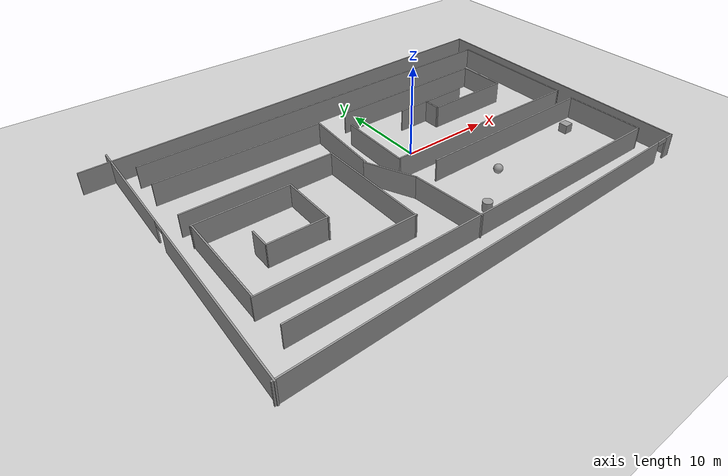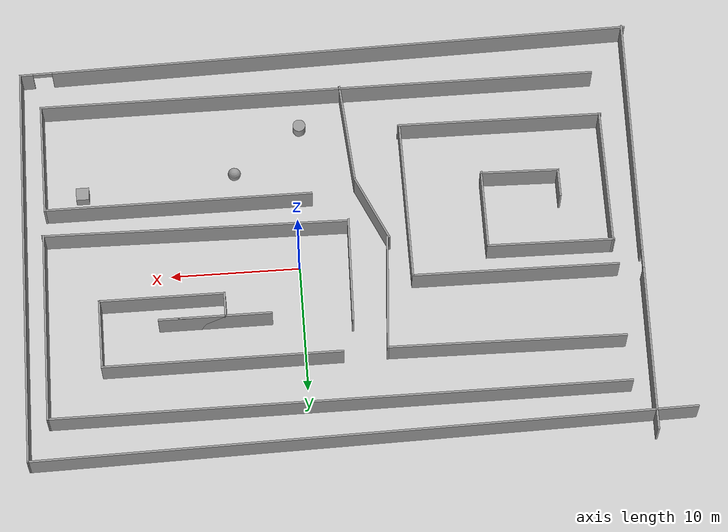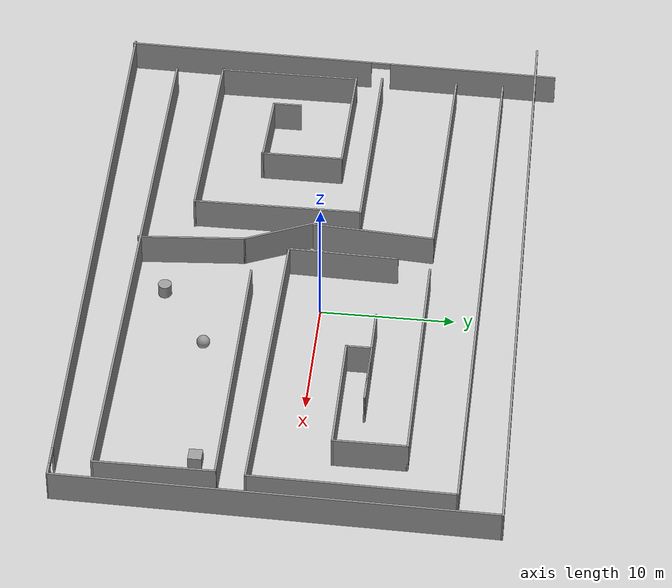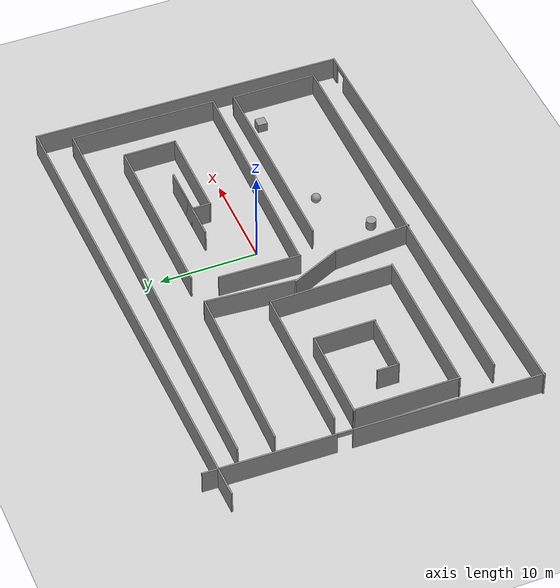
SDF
<sdf version="1.7">
 <world name="default">
  <light name="sun" type="directional">
   <pose>0 0 10 0 -0 0</pose>
   <diffuse>0.8 0.8 0.8 1</diffuse>
   <specular>0.2 0.2 0.2 1</specular>
   <attenuation>
    <range>1000</range>
    <constant>0.9</constant>
    <linear>0.01</linear>
    <quadratic>0.001</quadratic>
   </attenuation>
   <direction>-0.5 0.1 -0.9</direction>
   <spot><inner_angle>0</inner_angle><outer_angle>0</outer_angle><falloff>0</falloff></spot>
  </light>
  <model name="ground_plane">
   <static>1</static>
   <link name="link">
    <collision name="collision">
     <geometry><plane><normal>0 0 1</normal><size>100 100</size></plane></geometry>
     <surface>
      <contact><collide_bitmask>65535</collide_bitmask></contact>
      <friction><ode><mu>100</mu><mu2>50</mu2></ode></friction>
     </surface>
    </collision>
    <visual name="visual">
     <cast_shadows>0</cast_shadows>
     <geometry><plane><normal>0 0 1</normal><size>100 100</size></plane></geometry>
     <material>
      <script><uri>file://media/materials/scripts/gazebo.material</uri><name>Gazebo/Grey</name></script>
     </material>
    </visual>
   </link>
  </model>
  <gravity>0 0 -9.8</gravity>
  <magnetic_field>6e-06 2.3e-05 -4.2e-05</magnetic_field>
  <atmosphere type="adiabatic"/>
  <physics type="ode">
   <max_step_size>0.001</max_step_size>
   <real_time_factor>1</real_time_factor>
   <real_time_update_rate>1000</real_time_update_rate>
  </physics>
  <scene><ambient>0.4 0.4 0.4 1</ambient><background>0.7 0.7 0.7 1</background><shadows>1</shadows></scene>
  <spherical_coordinates>
   <surface_model>EARTH_WGS84</surface_model>
   <latitude_deg>0</latitude_deg>
   <longitude_deg>0</longitude_deg>
   <elevation>0</elevation>
   <heading_deg>0</heading_deg>
  </spherical_coordinates>
  <model name="puzzel.world">
   <pose>-3.9428 -1.05656 0 0 -0 0</pose>
   <link name="Wall_0">
    <pose>-22.4938 0 0 0 -0 -1.58992</pose>
    <visual name="Wall_0_Visual_0">
     <pose>-10.3296 0 1.25 0 -0 0</pose>
     <geometry><box><size>13.0997 0.15 2.5</size></box></geometry>
     <material>
      <script><uri>file://media/materials/scripts/gazebo.material</uri><name>Gazebo/Grey</name></script>
      <ambient>1 1 1 1</ambient>
     </material>
     <meta><layer>0</layer></meta>
    </visual>
    <collision name="Wall_0_Collision_0">
     <geometry><box><size>13.0997 0.15 2.5</size></box></geometry>
     <pose>-10.3296 0 1.25 0 -0 0</pose>
    </collision>
    <visual name="Wall_0_Visual_1">
     <pose>7.29983 0 1.25 0 -0 0</pose>
     <geometry><box><size>19.1593 0.15 2.5</size></box></geometry>
     <material>
      <script><uri>file://media/materials/scripts/gazebo.material</uri><name>Gazebo/Grey</name></script>
      <ambient>1 1 1 1</ambient>
     </material>
     <meta><layer>0</layer></meta>
    </visual>
    <collision name="Wall_0_Collision_1">
     <geometry><box><size>19.1593 0.15 2.5</size></box></geometry>
     <pose>7.29983 0 1.25 0 -0 0</pose>
    </collision>
    <visual name="Wall_0_Visual_2">
     <pose>-3.0298 0 2.25 0 -0 0</pose>
     <geometry><box><size>1.5 0.15 0.5</size></box></geometry>
     <material>
      <script><uri>file://media/materials/scripts/gazebo.material</uri><name>Gazebo/Grey</name></script>
      <ambient>1 1 1 1</ambient>
     </material>
     <meta><layer>0</layer></meta>
    </visual>
    <collision name="Wall_0_Collision_2">
     <geometry><box><size>1.5 0.15 0.5</size></box></geometry>
     <pose>-3.0298 0 2.25 0 -0 0</pose>
    </collision>
   </link>
   <link name="Wall_1">
    <pose>0.944127 -16.295 0 0 -0 0.017766</pose>
    <visual name="Wall_1_Visual_0">
     <pose>-1.29046 0 1.25 0 -0 0</pose>
     <geometry><box><size>45.4208 0.15 2.5</size></box></geometry>
     <material>
      <script><uri>file://media/materials/scripts/gazebo.material</uri><name>Gazebo/Grey</name></script>
      <ambient>1 1 1 1</ambient>
     </material>
     <meta><layer>0</layer></meta>
    </visual>
    <collision name="Wall_1_Collision_0">
     <geometry><box><size>45.4208 0.15 2.5</size></box></geometry>
     <pose>-1.29046 0 1.25 0 -0 0</pose>
    </collision>
    <visual name="Wall_1_Visual_1">
     <pose>23.4604 0 1.25 0 -0 0</pose>
     <geometry><box><size>1.08093 0.15 2.5</size></box></geometry>
     <material>
      <script><uri>file://media/materials/scripts/gazebo.material</uri><name>Gazebo/Grey</name></script>
      <ambient>1 1 1 1</ambient>
     </material>
     <meta><layer>0</layer></meta>
    </visual>
    <collision name="Wall_1_Collision_1">
     <geometry><box><size>1.08093 0.15 2.5</size></box></geometry>
     <pose>23.4604 0 1.25 0 -0 0</pose>
    </collision>
    <visual name="Wall_1_Visual_2">
     <pose>22.1699 0 2.25 0 -0 0</pose>
     <geometry><box><size>1.5 0.15 0.5</size></box></geometry>
     <material>
      <script><uri>file://media/materials/scripts/gazebo.material</uri><name>Gazebo/Grey</name></script>
      <ambient>1 1 1 1</ambient>
     </material>
     <meta><layer>0</layer></meta>
    </visual>
    <collision name="Wall_1_Collision_2">
     <geometry><box><size>1.5 0.15 0.5</size></box></geometry>
     <pose>22.1699 0 2.25 0 -0 0</pose>
    </collision>
   </link>
   <link name="Wall_14">
    <collision name="Wall_14_Collision">
     <geometry><box><size>18.2286 0.15 2.5</size></box></geometry>
     <pose>0 0 1.25 0 -0 0</pose>
    </collision>
    <visual name="Wall_14_Visual">
     <pose>0 0 1.25 0 -0 0</pose>
     <geometry><box><size>18.2286 0.15 2.5</size></box></geometry>
     <material>
      <script><uri>file://media/materials/scripts/gazebo.material</uri><name>Gazebo/Grey</name></script>
      <ambient>1 1 1 1</ambient>
     </material>
     <meta><layer>0</layer></meta>
    </visual>
    <pose>-11.4946 9.02324 0 0 -0 -0.015656</pose>
   </link>
   <link name="Wall_15">
    <collision name="Wall_15_Collision">
     <geometry><box><size>9.19698 0.15 2.5</size></box></geometry>
     <pose>0 0 1.25 0 -0 0</pose>
    </collision>
    <visual name="Wall_15_Visual">
     <pose>0 0 1.25 0 -0 0</pose>
     <geometry><box><size>9.19698 0.15 2.5</size></box></geometry>
     <material>
      <script><uri>file://media/materials/scripts/gazebo.material</uri><name>Gazebo/Grey</name></script>
      <ambient>1 1 1 1</ambient>
     </material>
     <meta><layer>0</layer></meta>
    </visual>
    <pose>-2.63327 4.36946 0 0 -0 -1.64124</pose>
   </link>
   <link name="Wall_16">
    <collision name="Wall_16_Collision">
     <geometry><box><size>5.68729 0.15 2.5</size></box></geometry>
     <pose>0 0 1.25 0 -0 0</pose>
    </collision>
    <visual name="Wall_16_Visual">
     <pose>0 0 1.25 0 -0 0</pose>
     <geometry><box><size>5.68729 0.15 2.5</size></box></geometry>
     <material>
      <script><uri>file://media/materials/scripts/gazebo.material</uri><name>Gazebo/Grey</name></script>
      <ambient>1 1 1 1</ambient>
     </material>
     <meta><layer>0</layer></meta>
    </visual>
    <pose>-1.93985 -2.6598 0 0 -0 -1.14112</pose>
   </link>
   <link name="Wall_17">
    <collision name="Wall_17_Collision">
     <geometry><box><size>8.101 0.15 2.5</size></box></geometry>
     <pose>0 0 1.25 0 -0 0</pose>
    </collision>
    <visual name="Wall_17_Visual">
     <pose>0 0 1.25 0 -0 0</pose>
     <geometry><box><size>8.101 0.15 2.5</size></box></geometry>
     <material>
      <script><uri>file://media/materials/scripts/gazebo.material</uri><name>Gazebo/Grey</name></script>
      <ambient>1 1 1 1</ambient>
     </material>
     <meta><layer>0</layer></meta>
    </visual>
    <pose>-0.468107 -9.13951 0 0 -0 -1.49062</pose>
   </link>
   <link name="Wall_19">
    <collision name="Wall_19_Collision">
     <geometry><box><size>20.75 0.15 2.5</size></box></geometry>
     <pose>0 0 1.25 0 -0 0</pose>
    </collision>
    <visual name="Wall_19_Visual">
     <pose>0 0 1.25 0 -0 0</pose>
     <geometry><box><size>20.75 0.15 2.5</size></box></geometry>
     <material>
      <script><uri>file://media/materials/scripts/gazebo.material</uri><name>Gazebo/Grey</name></script>
      <ambient>1 1 1 1</ambient>
     </material>
     <meta><layer>0</layer></meta>
    </visual>
    <pose>12.9579 -4.2437 0 0 -0 0</pose>
   </link>
   <link name="Wall_2">
    <collision name="Wall_2_Collision">
     <geometry><box><size>32.1049 0.15 2.5</size></box></geometry>
     <pose>0 0 1.25 0 -0 0</pose>
    </collision>
    <visual name="Wall_2_Visual">
     <pose>0 0 1.25 0 -0 0</pose>
     <geometry><box><size>32.1049 0.15 2.5</size></box></geometry>
     <material>
      <script><uri>file://media/materials/scripts/gazebo.material</uri><name>Gazebo/Grey</name></script>
      <ambient>1 1 1 1</ambient>
     </material>
     <meta><layer>0</layer></meta>
    </visual>
    <pose>25.0999 0.105768 0 0 -0 1.55617</pose>
   </link>
   <link name="Wall_20">
    <collision name="Wall_20_Collision">
     <geometry><box><size>8.87888 0.15 2.5</size></box></geometry>
     <pose>0 0 1.25 0 -0 0</pose>
    </collision>
    <visual name="Wall_20_Visual">
     <pose>0 0 1.25 0 -0 0</pose>
     <geometry><box><size>8.87888 0.15 2.5</size></box></geometry>
     <material>
      <script><uri>file://media/materials/scripts/gazebo.material</uri><name>Gazebo/Grey</name></script>
      <ambient>1 1 1 1</ambient>
     </material>
     <meta><layer>0</layer></meta>
    </visual>
    <pose>23.3392 -8.60795 0 0 -0 -1.5708</pose>
   </link>
   <link name="Wall_21">
    <collision name="Wall_21_Collision">
     <geometry><box><size>43.5 0.15 2.5</size></box></geometry>
     <pose>0 0 1.25 0 -0 0</pose>
    </collision>
    <visual name="Wall_21_Visual">
     <pose>0 0 1.25 0 -0 0</pose>
     <geometry><box><size>43.5 0.15 2.5</size></box></geometry>
     <material>
      <script><uri>file://media/materials/scripts/gazebo.material</uri><name>Gazebo/Grey</name></script>
      <ambient>1 1 1 1</ambient>
     </material>
     <meta><layer>0</layer></meta>
    </visual>
    <pose>1.66424 -12.9722 0 0 -0 3.14159</pose>
   </link>
   <link name="Wall_23">
    <collision name="Wall_23_Collision">
     <geometry><box><size>16.0054 0.15 2.5</size></box></geometry>
     <pose>0 0 1.25 0 -0 0</pose>
    </collision>
    <visual name="Wall_23_Visual">
     <pose>0 0 1.25 0 -0 0</pose>
     <geometry><box><size>16.0054 0.15 2.5</size></box></geometry>
     <material>
      <script><uri>file://media/materials/scripts/gazebo.material</uri><name>Gazebo/Grey</name></script>
      <ambient>1 1 1 1</ambient>
     </material>
     <meta><layer>0</layer></meta>
    </visual>
    <pose>-12.6054 3.23532 0 0 -0 -0.008925</pose>
   </link>
   <link name="Wall_24">
    <collision name="Wall_24_Collision">
     <geometry><box><size>12.7042 0.15 2.5</size></box></geometry>
     <pose>0 0 1.25 0 -0 0</pose>
    </collision>
    <visual name="Wall_24_Visual">
     <pose>0 0 1.25 0 -0 0</pose>
     <geometry><box><size>12.7042 0.15 2.5</size></box></geometry>
     <material>
      <script><uri>file://media/materials/scripts/gazebo.material</uri><name>Gazebo/Grey</name></script>
      <ambient>1 1 1 1</ambient>
     </material>
     <meta><layer>0</layer></meta>
    </visual>
    <pose>-4.63734 -3.19379 0 0 -0 -1.56431</pose>
   </link>
   <link name="Wall_25">
    <collision name="Wall_25_Collision">
     <geometry><box><size>16.0171 0.15 2.5</size></box></geometry>
     <pose>0 0 1.25 0 -0 0</pose>
    </collision>
    <visual name="Wall_25_Visual">
     <pose>0 0 1.25 0 -0 0</pose>
     <geometry><box><size>16.0171 0.15 2.5</size></box></geometry>
     <material>
      <script><uri>file://media/materials/scripts/gazebo.material</uri><name>Gazebo/Grey</name></script>
      <ambient>1 1 1 1</ambient>
     </material>
     <meta><layer>0</layer></meta>
    </visual>
    <pose>-12.4485 -9.40001 0 0 -0 3.13267</pose>
   </link>
   <link name="Wall_26">
    <collision name="Wall_26_Collision">
     <geometry><box><size>10.75 0.15 2.5</size></box></geometry>
     <pose>0 0 1.25 0 -0 0</pose>
    </collision>
    <visual name="Wall_26_Visual">
     <pose>0 0 1.25 0 -0 0</pose>
     <geometry><box><size>10.75 0.15 2.5</size></box></geometry>
     <material>
      <script><uri>file://media/materials/scripts/gazebo.material</uri><name>Gazebo/Grey</name></script>
      <ambient>1 1 1 1</ambient>
     </material>
     <meta><layer>0</layer></meta>
    </visual>
    <pose>-20.3004 -4.02926 0 0 -0 1.5708</pose>
   </link>
   <link name="Wall_27">
    <collision name="Wall_27_Collision">
     <geometry><box><size>9.89009 0.15 2.5</size></box></geometry>
     <pose>0 0 1.25 0 -0 0</pose>
    </collision>
    <visual name="Wall_27_Visual">
     <pose>0 0 1.25 0 -0 0</pose>
     <geometry><box><size>9.89009 0.15 2.5</size></box></geometry>
     <material>
      <script><uri>file://media/materials/scripts/gazebo.material</uri><name>Gazebo/Grey</name></script>
      <ambient>1 1 1 1</ambient>
     </material>
     <meta><layer>0</layer></meta>
    </visual>
    <pose>-15.5123 1.19999 0 0 -0 -0.01453</pose>
   </link>
   <link name="Wall_28">
    <collision name="Wall_28_Collision">
     <geometry><box><size>6.25 0.15 2.5</size></box></geometry>
     <pose>0 0 1.25 0 -0 0</pose>
    </collision>
    <visual name="Wall_28_Visual">
     <pose>0 0 1.25 0 -0 0</pose>
     <geometry><box><size>6.25 0.15 2.5</size></box></geometry>
     <material>
      <script><uri>file://media/materials/scripts/gazebo.material</uri><name>Gazebo/Grey</name></script>
      <ambient>1 1 1 1</ambient>
     </material>
     <meta><layer>0</layer></meta>
    </visual>
    <pose>-10.6427 -1.99153 0 0 -0 -1.5708</pose>
   </link>
   <link name="Wall_29">
    <collision name="Wall_29_Collision">
     <geometry><box><size>6.12896 0.15 2.5</size></box></geometry>
     <pose>0 0 1.25 0 -0 0</pose>
    </collision>
    <visual name="Wall_29_Visual">
     <pose>0 0 1.25 0 -0 0</pose>
     <geometry><box><size>6.12896 0.15 2.5</size></box></geometry>
     <material>
      <script><uri>file://media/materials/scripts/gazebo.material</uri><name>Gazebo/Grey</name></script>
      <ambient>1 1 1 1</ambient>
     </material>
     <meta><layer>0</layer></meta>
    </visual>
    <pose>-13.6314 -4.90001 0 0 -0 3.11792</pose>
   </link>
   <link name="Wall_3">
    <collision name="Wall_3_Collision">
     <geometry><box><size>50.8242 0.15 2.5</size></box></geometry>
     <pose>0 0 1.25 0 -0 0</pose>
    </collision>
    <visual name="Wall_3_Visual">
     <pose>0 0 1.25 0 -0 0</pose>
     <geometry><box><size>50.8242 0.15 2.5</size></box></geometry>
     <material>
      <script><uri>file://media/materials/scripts/gazebo.material</uri><name>Gazebo/Grey</name></script>
      <ambient>1 1 1 1</ambient>
     </material>
     <meta><layer>0</layer></meta>
    </visual>
    <pose>-0 15.6623 0 0 -0 -3.12505</pose>
   </link>
   <link name="Wall_30">
    <collision name="Wall_30_Collision">
     <geometry><box><size>2.25 0.15 2.5</size></box></geometry>
     <pose>0 0 1.25 0 -0 0</pose>
    </collision>
    <visual name="Wall_30_Visual">
     <pose>0 0 1.25 0 -0 0</pose>
     <geometry><box><size>2.25 0.15 2.5</size></box></geometry>
     <material>
      <script><uri>file://media/materials/scripts/gazebo.material</uri><name>Gazebo/Grey</name></script>
      <ambient>1 1 1 1</ambient>
     </material>
     <meta><layer>0</layer></meta>
    </visual>
    <pose>-16.62 -3.77926 0 0 -0 1.5708</pose>
   </link>
   <link name="Wall_32">
    <collision name="Wall_32_Collision">
     <geometry><box><size>18.5 0.15 2.5</size></box></geometry>
     <pose>0 0 1.25 0 -0 0</pose>
    </collision>
    <visual name="Wall_32_Visual">
     <pose>0 0 1.25 0 -0 0</pose>
     <geometry><box><size>18.5 0.15 2.5</size></box></geometry>
     <material>
      <script><uri>file://media/materials/scripts/gazebo.material</uri><name>Gazebo/Grey</name></script>
      <ambient>1 1 1 1</ambient>
     </material>
     <meta><layer>0</layer></meta>
    </visual>
    <pose>10.2922 8.93767 0 0 -0 0</pose>
   </link>
   <link name="Wall_33">
    <collision name="Wall_33_Collision">
     <geometry><box><size>5.5 0.15 2.5</size></box></geometry>
     <pose>0 0 1.25 0 -0 0</pose>
    </collision>
    <visual name="Wall_33_Visual">
     <pose>0 0 1.25 0 -0 0</pose>
     <geometry><box><size>5.5 0.15 2.5</size></box></geometry>
     <material>
      <script><uri>file://media/materials/scripts/gazebo.material</uri><name>Gazebo/Grey</name></script>
      <ambient>1 1 1 1</ambient>
     </material>
     <meta><layer>0</layer></meta>
    </visual>
    <pose>19.4672 6.26267 0 0 -0 -1.5708</pose>
   </link>
   <link name="Wall_34">
    <collision name="Wall_34_Collision">
     <geometry><box><size>9.75 0.15 2.5</size></box></geometry>
     <pose>0 0 1.25 0 -0 0</pose>
    </collision>
    <visual name="Wall_34_Visual">
     <pose>0 0 1.25 0 -0 0</pose>
     <geometry><box><size>9.75 0.15 2.5</size></box></geometry>
     <material>
      <script><uri>file://media/materials/scripts/gazebo.material</uri><name>Gazebo/Grey</name></script>
      <ambient>1 1 1 1</ambient>
     </material>
     <meta><layer>0</layer></meta>
    </visual>
    <pose>14.6672 3.58767 0 0 -0 3.14159</pose>
   </link>
   <link name="Wall_35">
    <collision name="Wall_35_Collision">
     <geometry><box><size>2 0.15 2.5</size></box></geometry>
     <pose>0 0 1.25 0 -0 0</pose>
    </collision>
    <visual name="Wall_35_Visual">
     <pose>0 0 1.25 0 -0 0</pose>
     <geometry><box><size>2 0.15 2.5</size></box></geometry>
     <material>
      <script><uri>file://media/materials/scripts/gazebo.material</uri><name>Gazebo/Grey</name></script>
      <ambient>1 1 1 1</ambient>
     </material>
     <meta><layer>0</layer></meta>
    </visual>
    <pose>9.86721 4.51267 0 0 -0 1.5708</pose>
   </link>
   <link name="Wall_36">
    <collision name="Wall_36_Collision">
     <geometry><box><size>5.25 0.15 2.5</size></box></geometry>
     <pose>0 0 1.25 0 -0 0</pose>
    </collision>
    <visual name="Wall_36_Visual">
     <pose>0 0 1.25 0 -0 0</pose>
     <geometry><box><size>5.25 0.15 2.5</size></box></geometry>
     <material>
      <script><uri>file://media/materials/scripts/gazebo.material</uri><name>Gazebo/Grey</name></script>
      <ambient>1 1 1 1</ambient>
     </material>
     <meta><layer>0</layer></meta>
    </visual>
    <pose>12.4172 5.43767 0 0 -0 0</pose>
   </link>
   <link name="Wall_37">
    <collision name="Wall_37_Collision">
     <geometry><box><size>8.75 0.15 2.5</size></box></geometry>
     <pose>0 0 1.25 0 -0 0</pose>
    </collision>
    <visual name="Wall_37_Visual">
     <pose>0 0 1.25 0 -0 0</pose>
     <geometry><box><size>8.75 0.15 2.5</size></box></geometry>
     <material>
      <script><uri>file://media/materials/scripts/gazebo.material</uri><name>Gazebo/Grey</name></script>
      <ambient>1 1 1 1</ambient>
     </material>
     <meta><layer>0</layer></meta>
    </visual>
    <pose>10.6672 5.43767 0 0 -0 3.14159</pose>
   </link>
   <link name="Wall_5">
    <collision name="Wall_5_Collision">
     <geometry><box><size>44.5 0.15 2.5</size></box></geometry>
     <pose>0 0 1.25 0 -0 0</pose>
    </collision>
    <visual name="Wall_5_Visual">
     <pose>0 0 1.25 0 -0 0</pose>
     <geometry><box><size>44.5 0.15 2.5</size></box></geometry>
     <material>
      <script><uri>file://media/materials/scripts/gazebo.material</uri><name>Gazebo/Grey</name></script>
      <ambient>1 1 1 1</ambient>
     </material>
     <meta><layer>0</layer></meta>
    </visual>
    <pose>1.56088 12.8264 0 0 -0 0</pose>
   </link>
   <link name="Wall_6">
    <collision name="Wall_6_Collision">
     <geometry><box><size>15.07 0.15 2.5</size></box></geometry>
     <pose>0 0 1.25 0 -0 0</pose>
    </collision>
    <visual name="Wall_6_Visual">
     <pose>0 0 1.25 0 -0 0</pose>
     <geometry><box><size>15.07 0.15 2.5</size></box></geometry>
     <material>
      <script><uri>file://media/materials/scripts/gazebo.material</uri><name>Gazebo/Grey</name></script>
      <ambient>1 1 1 1</ambient>
     </material>
     <meta><layer>0</layer></meta>
    </visual>
    <pose>23.6297 5.3672 0 0 -0 -1.58502</pose>
   </link>
   <link name="Wall_7">
    <collision name="Wall_7_Collision">
     <geometry><box><size>23.7092 0.15 2.5</size></box></geometry>
     <pose>0 0 1.25 0 -0 0</pose>
    </collision>
    <visual name="Wall_7_Visual">
     <pose>0 0 1.25 0 -0 0</pose>
     <geometry><box><size>23.7092 0.15 2.5</size></box></geometry>
     <material>
      <script><uri>file://media/materials/scripts/gazebo.material</uri><name>Gazebo/Grey</name></script>
      <ambient>1 1 1 1</ambient>
     </material>
     <meta><layer>0</layer></meta>
    </visual>
    <pose>11.8161 -1.91338 0 0 -0 3.12642</pose>
   </link>
   <link name="Wall_8">
    <collision name="Wall_8_Collision">
     <geometry><box><size>8.39197 0.15 2.5</size></box></geometry>
     <pose>0 0 1.25 0 -0 0</pose>
    </collision>
    <visual name="Wall_8_Visual">
     <pose>0 0 1.25 0 -0 0</pose>
     <geometry><box><size>8.39197 0.15 2.5</size></box></geometry>
     <material>
      <script><uri>file://media/materials/scripts/gazebo.material</uri><name>Gazebo/Grey</name></script>
      <ambient>1 1 1 1</ambient>
     </material>
     <meta><layer>0</layer></meta>
    </visual>
    <pose>0.06267 2.30353 0 0 -0 1.54504</pose>
   </link>
   <static>1</static>
  </model>
  <model name="unit_sphere">
   <pose>4.59405 -8.14485 0.5 0 -0 0</pose>
   <link name="link">
    <inertial>
     <mass>1</mass>
     <inertia><ixx>0.1</ixx><ixy>0</ixy><ixz>0</ixz><iyy>0.1</iyy><iyz>0</iyz><izz>0.1</izz></inertia>
    </inertial>
    <collision name="collision"><geometry><sphere><radius>0.5</radius></sphere></geometry></collision>
    <visual name="visual">
     <geometry><sphere><radius>0.5</radius></sphere></geometry>
     <material>
      <script><name>Gazebo/Grey</name><uri>file://media/materials/scripts/gazebo.material</uri></script>
     </material>
    </visual>
   </link>
  </model>
  <model name="unit_box">
   <pose>16.5156 -7.11013 0.499995 0 -1e-05 0</pose>
   <link name="link">
    <inertial>
     <mass>1</mass>
     <inertia>
      <ixx>0.166667</ixx>
      <ixy>0</ixy>
      <ixz>0</ixz>
      <iyy>0.166667</iyy>
      <iyz>0</iyz>
      <izz>0.166667</izz>
     </inertia>
    </inertial>
    <collision name="collision"><geometry><box><size>1 1 1</size></box></geometry></collision>
    <visual name="visual">
     <geometry><box><size>1 1 1</size></box></geometry>
     <material>
      <script><name>Gazebo/Grey</name><uri>file://media/materials/scripts/gazebo.material</uri></script>
     </material>
    </visual>
   </link>
  </model>
  <model name="unit_cylinder">
   <pose>-0.726851 -11.7387 0.499992 -3e-06 -4e-06 -0</pose>
   <link name="link">
    <inertial>
     <mass>1</mass>
     <inertia><ixx>0.145833</ixx><ixy>0</ixy><ixz>0</ixz><iyy>0.145833</iyy><iyz>0</iyz><izz>0.125</izz></inertia>
    </inertial>
    <collision name="collision">
     <geometry><cylinder><radius>0.5</radius><length>1</length></cylinder></geometry>
    </collision>
    <visual name="visual">
     <geometry><cylinder><radius>0.5</radius><length>1</length></cylinder></geometry>
     <material>
      <script><name>Gazebo/Grey</name><uri>file://media/materials/scripts/gazebo.material</uri></script>
     </material>
    </visual>
   </link>
  </model>
  <light name="user_point_light_0" type="point">
   <pose>-0.973207 -11.1112 1 0 -0 0</pose>
   <diffuse>0.5 0.5 0.5 1</diffuse>
   <specular>0.1 0.1 0.1 1</specular>
   <attenuation>
    <range>20</range>
    <constant>0.5</constant>
    <linear>0.01</linear>
    <quadratic>0.001</quadratic>
   </attenuation>
   <cast_shadows>0</cast_shadows>
   <direction>0 0 -1</direction>
  </light>
  <light name="user_spot_light_0" type="spot">
   <pose>4.5724 -8.07439 1 0 -0 0</pose>
   <diffuse>0.5 0.5 0.5 1</diffuse>
   <specular>0.1 0.1 0.1 1</specular>
   <direction>0 0 -1</direction>
   <attenuation>
    <range>20</range>
    <constant>0.5</constant>
    <linear>0.01</linear>
    <quadratic>0.001</quadratic>
   </attenuation>
   <cast_shadows>0</cast_shadows>
   <spot><inner_angle>0.6</inner_angle><outer_angle>1</outer_angle><falloff>1</falloff></spot>
  </light>
  <light name="user_directional_light_0" type="directional">
   <pose>16.4723 -7.11683 1 0 -0 0</pose>
   <diffuse>0.5 0.5 0.5 1</diffuse>
   <specular>0.1 0.1 0.1 1</specular>
   <direction>0.1 0.1 -0.9</direction>
   <attenuation>
    <range>20</range>
    <constant>0.5</constant>
    <linear>0.01</linear>
    <quadratic>0.001</quadratic>
   </attenuation>
  </light>
  <light name="sun" type="directional">
   <pose>18.2217 -19.6818 10 0 -0 0</pose>
   <diffuse>0.8 0.8 0.8 1</diffuse>
   <specular>0.2 0.2 0.2 1</specular>
   <attenuation>
    <range>1000</range>
    <constant>0.9</constant>
    <linear>0.01</linear>
    <quadratic>0.001</quadratic>
   </attenuation>
   <direction>-0.5 0.1 -0.9</direction>
  </light>
 </world>
</sdf>
